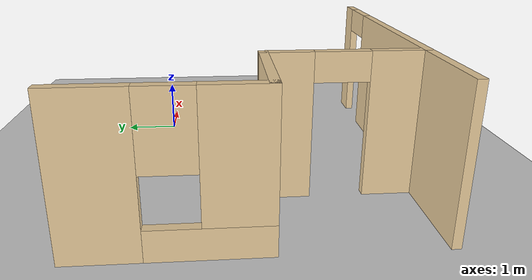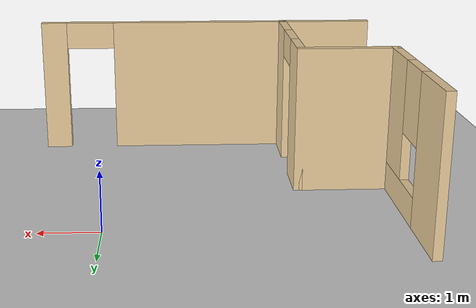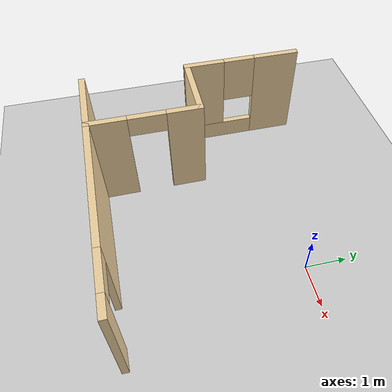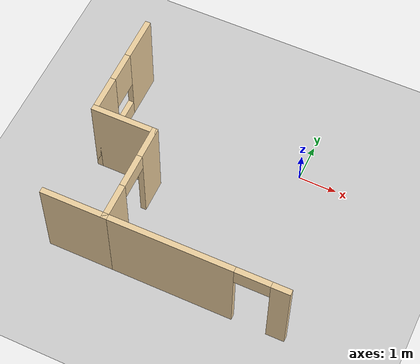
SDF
<sdf version="1.6">
 <world name="default">
  <model name="ground_plane">
   <static>1</static>
   <link name="link">
    <collision name="collision">
     <geometry><plane><normal>0 0 1</normal><size>100 100</size></plane></geometry>
     <surface>
      <contact><collide_bitmask>65535</collide_bitmask></contact>
      <friction><ode><mu>100</mu><mu2>50</mu2></ode></friction>
     </surface>
    </collision>
    <visual name="visual">
     <cast_shadows>0</cast_shadows>
     <geometry><plane><normal>0 0 1</normal><size>100 100</size></plane></geometry>
     <material>
      <script><uri>file://media/materials/scripts/gazebo.material</uri><name>Gazebo/Grey</name></script>
     </material>
    </visual>
   </link>
  </model>
  <model name="someHouse">
   <link name="Wall_38">
    <pose>-4.175 2.725 0 0 0 -1.5708</pose>
    <visual name="Wall_38_Visual_0">
     <pose>-0.917775 0 1.25 0 -0 0</pose>
     <geometry><box><size>1.16445 0.15 2.5</size></box></geometry>
     <material>
      <script><uri>file://media/materials/scripts/gazebo.material</uri><name>Gazebo/Grey</name></script>
      <ambient>0.921569 0.807843 0.615686 1</ambient>
      <shader type="pixel"/>
      <diffuse>0.7 0.7 0.7 1</diffuse>
      <specular>0.01 0.01 0.01 1</specular>
      <emissive>0 0 0 1</emissive>
     </material>
     <meta><layer>0</layer></meta>
    </visual>
    <visual name="Wall_38_Visual_1">
     <pose>0.582225 0 0.25 0 -0 0</pose>
     <geometry><box><size>1.83555 0.15 0.5</size></box></geometry>
     <material>
      <script><uri>file://media/materials/scripts/gazebo.material</uri><name>Gazebo/Grey</name></script>
      <ambient>0.921569 0.807843 0.615686 1</ambient>
      <shader type="pixel"/>
      <diffuse>0.7 0.7 0.7 1</diffuse>
      <specular>0.01 0.01 0.01 1</specular>
      <emissive>0 0 0 1</emissive>
     </material>
     <meta><layer>0</layer></meta>
    </visual>
    <visual name="Wall_38_Visual_2">
     <pose>0.982225 0 1.5 0 -0 0</pose>
     <geometry><box><size>1.03555 0.15 2</size></box></geometry>
     <material>
      <script><uri>file://media/materials/scripts/gazebo.material</uri><name>Gazebo/Grey</name></script>
      <ambient>0.921569 0.807843 0.615686 1</ambient>
      <shader type="pixel"/>
      <diffuse>0.7 0.7 0.7 1</diffuse>
      <specular>0.01 0.01 0.01 1</specular>
      <emissive>0 0 0 1</emissive>
     </material>
     <meta><layer>0</layer></meta>
    </visual>
    <visual name="Wall_38_Visual_3">
     <pose>0.06445 0 1.9 0 -0 0</pose>
     <geometry><box><size>0.8 0.15 1.2</size></box></geometry>
     <material>
      <script><uri>file://media/materials/scripts/gazebo.material</uri><name>Gazebo/Grey</name></script>
      <ambient>0.921569 0.807843 0.615686 1</ambient>
      <shader type="pixel"/>
      <diffuse>0.7 0.7 0.7 1</diffuse>
      <specular>0.01 0.01 0.01 1</specular>
      <emissive>0 0 0 1</emissive>
     </material>
     <meta><layer>0</layer></meta>
    </visual>
    <collision name="Wall_38_Collision_0">
     <pose>-0.917775 0 1.25 0 -0 0</pose>
     <geometry><box><size>1.16445 0.15 2.5</size></box></geometry>
     <surface>
      <friction>
       <ode><mu>1</mu><mu2>1</mu2><fdir1>0 0 0</fdir1><slip1>0</slip1><slip2>0</slip2></ode>
       <torsional>
        <coefficient>1</coefficient>
        <patch_radius>0</patch_radius>
        <surface_radius>0</surface_radius>
        <use_patch_radius>1</use_patch_radius>
        <ode><slip>0</slip></ode>
       </torsional>
      </friction>
      <bounce><restitution_coefficient>0</restitution_coefficient><threshold>1e+06</threshold></bounce>
      <contact>
       <collide_without_contact>0</collide_without_contact>
       <collide_without_contact_bitmask>1</collide_without_contact_bitmask>
       <collide_bitmask>1</collide_bitmask>
       <ode>
        <soft_cfm>0</soft_cfm>
        <soft_erp>0.2</soft_erp>
        <kp>1e+13</kp>
        <kd>1</kd>
        <max_vel>0.01</max_vel>
        <min_depth>0</min_depth>
       </ode>
       <bullet>
        <split_impulse>1</split_impulse>
        <split_impulse_penetration_threshold>-0.01</split_impulse_penetration_threshold>
        <soft_cfm>0</soft_cfm>
        <soft_erp>0.2</soft_erp>
        <kp>1e+13</kp>
        <kd>1</kd>
       </bullet>
      </contact>
     </surface>
    </collision>
    <collision name="Wall_38_Collision_1">
     <pose>0.582225 0 0.25 0 -0 0</pose>
     <geometry><box><size>1.83555 0.15 0.5</size></box></geometry>
     <surface>
      <friction>
       <ode><mu>1</mu><mu2>1</mu2><fdir1>0 0 0</fdir1><slip1>0</slip1><slip2>0</slip2></ode>
       <torsional>
        <coefficient>1</coefficient>
        <patch_radius>0</patch_radius>
        <surface_radius>0</surface_radius>
        <use_patch_radius>1</use_patch_radius>
        <ode><slip>0</slip></ode>
       </torsional>
      </friction>
      <bounce><restitution_coefficient>0</restitution_coefficient><threshold>1e+06</threshold></bounce>
      <contact>
       <collide_without_contact>0</collide_without_contact>
       <collide_without_contact_bitmask>1</collide_without_contact_bitmask>
       <collide_bitmask>1</collide_bitmask>
       <ode>
        <soft_cfm>0</soft_cfm>
        <soft_erp>0.2</soft_erp>
        <kp>1e+13</kp>
        <kd>1</kd>
        <max_vel>0.01</max_vel>
        <min_depth>0</min_depth>
       </ode>
       <bullet>
        <split_impulse>1</split_impulse>
        <split_impulse_penetration_threshold>-0.01</split_impulse_penetration_threshold>
        <soft_cfm>0</soft_cfm>
        <soft_erp>0.2</soft_erp>
        <kp>1e+13</kp>
        <kd>1</kd>
       </bullet>
      </contact>
     </surface>
    </collision>
    <collision name="Wall_38_Collision_2">
     <pose>0.982225 0 1.5 0 -0 0</pose>
     <geometry><box><size>1.03555 0.15 2</size></box></geometry>
     <surface>
      <friction>
       <ode><mu>1</mu><mu2>1</mu2><fdir1>0 0 0</fdir1><slip1>0</slip1><slip2>0</slip2></ode>
       <torsional>
        <coefficient>1</coefficient>
        <patch_radius>0</patch_radius>
        <surface_radius>0</surface_radius>
        <use_patch_radius>1</use_patch_radius>
        <ode><slip>0</slip></ode>
       </torsional>
      </friction>
      <bounce><restitution_coefficient>0</restitution_coefficient><threshold>1e+06</threshold></bounce>
      <contact>
       <collide_without_contact>0</collide_without_contact>
       <collide_without_contact_bitmask>1</collide_without_contact_bitmask>
       <collide_bitmask>1</collide_bitmask>
       <ode>
        <soft_cfm>0</soft_cfm>
        <soft_erp>0.2</soft_erp>
        <kp>1e+13</kp>
        <kd>1</kd>
        <max_vel>0.01</max_vel>
        <min_depth>0</min_depth>
       </ode>
       <bullet>
        <split_impulse>1</split_impulse>
        <split_impulse_penetration_threshold>-0.01</split_impulse_penetration_threshold>
        <soft_cfm>0</soft_cfm>
        <soft_erp>0.2</soft_erp>
        <kp>1e+13</kp>
        <kd>1</kd>
       </bullet>
      </contact>
     </surface>
    </collision>
    <collision name="Wall_38_Collision_3">
     <pose>0.06445 0 1.9 0 -0 0</pose>
     <geometry><box><size>0.8 0.15 1.2</size></box></geometry>
     <surface>
      <friction>
       <ode><mu>1</mu><mu2>1</mu2><fdir1>0 0 0</fdir1><slip1>0</slip1><slip2>0</slip2></ode>
       <torsional>
        <coefficient>1</coefficient>
        <patch_radius>0</patch_radius>
        <surface_radius>0</surface_radius>
        <use_patch_radius>1</use_patch_radius>
        <ode><slip>0</slip></ode>
       </torsional>
      </friction>
      <bounce><restitution_coefficient>0</restitution_coefficient><threshold>1e+06</threshold></bounce>
      <contact>
       <collide_without_contact>0</collide_without_contact>
       <collide_without_contact_bitmask>1</collide_without_contact_bitmask>
       <collide_bitmask>1</collide_bitmask>
       <ode>
        <soft_cfm>0</soft_cfm>
        <soft_erp>0.2</soft_erp>
        <kp>1e+13</kp>
        <kd>1</kd>
        <max_vel>0.01</max_vel>
        <min_depth>0</min_depth>
       </ode>
       <bullet>
        <split_impulse>1</split_impulse>
        <split_impulse_penetration_threshold>-0.01</split_impulse_penetration_threshold>
        <soft_cfm>0</soft_cfm>
        <soft_erp>0.2</soft_erp>
        <kp>1e+13</kp>
        <kd>1</kd>
       </bullet>
      </contact>
     </surface>
    </collision>
   </link>
   <link name="Wall_39">
    <pose>-3.375 1.3 0 0 -0 0</pose>
    <visual name="Wall_39_Visual">
     <pose>0 0 1.25 0 -0 0</pose>
     <geometry><box><size>1.75 0.15 2.5</size></box></geometry>
     <material>
      <script><uri>file://media/materials/scripts/gazebo.material</uri><name>Gazebo/Grey</name></script>
      <ambient>0.921569 0.807843 0.615686 1</ambient>
      <shader type="pixel"/>
      <diffuse>0.7 0.7 0.7 1</diffuse>
      <specular>0.01 0.01 0.01 1</specular>
      <emissive>0 0 0 1</emissive>
     </material>
     <meta><layer>0</layer></meta>
    </visual>
    <collision name="Wall_39_Collision">
     <pose>0 0 1.25 0 -0 0</pose>
     <geometry><box><size>1.75 0.15 2.5</size></box></geometry>
     <surface>
      <friction>
       <ode><mu>1</mu><mu2>1</mu2><fdir1>0 0 0</fdir1><slip1>0</slip1><slip2>0</slip2></ode>
       <torsional>
        <coefficient>1</coefficient>
        <patch_radius>0</patch_radius>
        <surface_radius>0</surface_radius>
        <use_patch_radius>1</use_patch_radius>
        <ode><slip>0</slip></ode>
       </torsional>
      </friction>
      <bounce><restitution_coefficient>0</restitution_coefficient><threshold>1e+06</threshold></bounce>
      <contact>
       <collide_without_contact>0</collide_without_contact>
       <collide_without_contact_bitmask>1</collide_without_contact_bitmask>
       <collide_bitmask>1</collide_bitmask>
       <ode>
        <soft_cfm>0</soft_cfm>
        <soft_erp>0.2</soft_erp>
        <kp>1e+13</kp>
        <kd>1</kd>
        <max_vel>0.01</max_vel>
        <min_depth>0</min_depth>
       </ode>
       <bullet>
        <split_impulse>1</split_impulse>
        <split_impulse_penetration_threshold>-0.01</split_impulse_penetration_threshold>
        <soft_cfm>0</soft_cfm>
        <soft_erp>0.2</soft_erp>
        <kp>1e+13</kp>
        <kd>1</kd>
       </bullet>
      </contact>
     </surface>
    </collision>
   </link>
   <link name="Wall_40">
    <pose>-2.575 0 0 0 0 -1.5708</pose>
    <visual name="Wall_40_Visual_0">
     <pose>-0.940762 0 1.25 0 -0 0</pose>
     <geometry><box><size>0.868475 0.15 2.5</size></box></geometry>
     <material>
      <script><uri>file://media/materials/scripts/gazebo.material</uri><name>Gazebo/Grey</name></script>
      <ambient>0.921569 0.807843 0.615686 1</ambient>
      <shader type="pixel"/>
      <diffuse>0.7 0.7 0.7 1</diffuse>
      <specular>0.01 0.01 0.01 1</specular>
      <emissive>0 0 0 1</emissive>
     </material>
     <meta><layer>0</layer></meta>
    </visual>
    <visual name="Wall_40_Visual_1">
     <pose>0.884238 0 1.25 0 -0 0</pose>
     <geometry><box><size>0.981525 0.15 2.5</size></box></geometry>
     <material>
      <script><uri>file://media/materials/scripts/gazebo.material</uri><name>Gazebo/Grey</name></script>
      <ambient>0.921569 0.807843 0.615686 1</ambient>
      <shader type="pixel"/>
      <diffuse>0.7 0.7 0.7 1</diffuse>
      <specular>0.01 0.01 0.01 1</specular>
      <emissive>0 0 0 1</emissive>
     </material>
     <meta><layer>0</layer></meta>
    </visual>
    <visual name="Wall_40_Visual_2">
     <pose>-0.056525 0 2.25 0 -0 0</pose>
     <geometry><box><size>0.9 0.15 0.5</size></box></geometry>
     <material>
      <script><uri>file://media/materials/scripts/gazebo.material</uri><name>Gazebo/Grey</name></script>
      <ambient>0.921569 0.807843 0.615686 1</ambient>
      <shader type="pixel"/>
      <diffuse>0.7 0.7 0.7 1</diffuse>
      <specular>0.01 0.01 0.01 1</specular>
      <emissive>0 0 0 1</emissive>
     </material>
     <meta><layer>0</layer></meta>
    </visual>
    <collision name="Wall_40_Collision_0">
     <pose>-0.940762 0 1.25 0 -0 0</pose>
     <geometry><box><size>0.868475 0.15 2.5</size></box></geometry>
     <surface>
      <friction>
       <ode><mu>1</mu><mu2>1</mu2><fdir1>0 0 0</fdir1><slip1>0</slip1><slip2>0</slip2></ode>
       <torsional>
        <coefficient>1</coefficient>
        <patch_radius>0</patch_radius>
        <surface_radius>0</surface_radius>
        <use_patch_radius>1</use_patch_radius>
        <ode><slip>0</slip></ode>
       </torsional>
      </friction>
      <bounce><restitution_coefficient>0</restitution_coefficient><threshold>1e+06</threshold></bounce>
      <contact>
       <collide_without_contact>0</collide_without_contact>
       <collide_without_contact_bitmask>1</collide_without_contact_bitmask>
       <collide_bitmask>1</collide_bitmask>
       <ode>
        <soft_cfm>0</soft_cfm>
        <soft_erp>0.2</soft_erp>
        <kp>1e+13</kp>
        <kd>1</kd>
        <max_vel>0.01</max_vel>
        <min_depth>0</min_depth>
       </ode>
       <bullet>
        <split_impulse>1</split_impulse>
        <split_impulse_penetration_threshold>-0.01</split_impulse_penetration_threshold>
        <soft_cfm>0</soft_cfm>
        <soft_erp>0.2</soft_erp>
        <kp>1e+13</kp>
        <kd>1</kd>
       </bullet>
      </contact>
     </surface>
    </collision>
    <collision name="Wall_40_Collision_1">
     <pose>0.884238 0 1.25 0 -0 0</pose>
     <geometry><box><size>0.981525 0.15 2.5</size></box></geometry>
     <surface>
      <friction>
       <ode><mu>1</mu><mu2>1</mu2><fdir1>0 0 0</fdir1><slip1>0</slip1><slip2>0</slip2></ode>
       <torsional>
        <coefficient>1</coefficient>
        <patch_radius>0</patch_radius>
        <surface_radius>0</surface_radius>
        <use_patch_radius>1</use_patch_radius>
        <ode><slip>0</slip></ode>
       </torsional>
      </friction>
      <bounce><restitution_coefficient>0</restitution_coefficient><threshold>1e+06</threshold></bounce>
      <contact>
       <collide_without_contact>0</collide_without_contact>
       <collide_without_contact_bitmask>1</collide_without_contact_bitmask>
       <collide_bitmask>1</collide_bitmask>
       <ode>
        <soft_cfm>0</soft_cfm>
        <soft_erp>0.2</soft_erp>
        <kp>1e+13</kp>
        <kd>1</kd>
        <max_vel>0.01</max_vel>
        <min_depth>0</min_depth>
       </ode>
       <bullet>
        <split_impulse>1</split_impulse>
        <split_impulse_penetration_threshold>-0.01</split_impulse_penetration_threshold>
        <soft_cfm>0</soft_cfm>
        <soft_erp>0.2</soft_erp>
        <kp>1e+13</kp>
        <kd>1</kd>
       </bullet>
      </contact>
     </surface>
    </collision>
    <collision name="Wall_40_Collision_2">
     <pose>-0.056525 0 2.25 0 -0 0</pose>
     <geometry><box><size>0.9 0.15 0.5</size></box></geometry>
     <surface>
      <friction>
       <ode><mu>1</mu><mu2>1</mu2><fdir1>0 0 0</fdir1><slip1>0</slip1><slip2>0</slip2></ode>
       <torsional>
        <coefficient>1</coefficient>
        <patch_radius>0</patch_radius>
        <surface_radius>0</surface_radius>
        <use_patch_radius>1</use_patch_radius>
        <ode><slip>0</slip></ode>
       </torsional>
      </friction>
      <bounce><restitution_coefficient>0</restitution_coefficient><threshold>1e+06</threshold></bounce>
      <contact>
       <collide_without_contact>0</collide_without_contact>
       <collide_without_contact_bitmask>1</collide_without_contact_bitmask>
       <collide_bitmask>1</collide_bitmask>
       <ode>
        <soft_cfm>0</soft_cfm>
        <soft_erp>0.2</soft_erp>
        <kp>1e+13</kp>
        <kd>1</kd>
        <max_vel>0.01</max_vel>
        <min_depth>0</min_depth>
       </ode>
       <bullet>
        <split_impulse>1</split_impulse>
        <split_impulse_penetration_threshold>-0.01</split_impulse_penetration_threshold>
        <soft_cfm>0</soft_cfm>
        <soft_erp>0.2</soft_erp>
        <kp>1e+13</kp>
        <kd>1</kd>
       </bullet>
      </contact>
     </surface>
    </collision>
   </link>
   <link name="Wall_41">
    <pose>-0.275 -1.3 0 0 -0 0</pose>
    <visual name="Wall_41_Visual_0">
     <pose>-0.691647 0 1.25 0 -0 0</pose>
     <geometry><box><size>3.36671 0.15 2.5</size></box></geometry>
     <material>
      <script><uri>file://media/materials/scripts/gazebo.material</uri><name>Gazebo/Grey</name></script>
      <ambient>0.921569 0.807843 0.615686 1</ambient>
      <shader type="pixel"/>
      <diffuse>0.7 0.7 0.7 1</diffuse>
      <specular>0.01 0.01 0.01 1</specular>
      <emissive>0 0 0 1</emissive>
     </material>
     <meta><layer>0</layer></meta>
    </visual>
    <visual name="Wall_41_Visual_1">
     <pose>2.13335 0 1.25 0 -0 0</pose>
     <geometry><box><size>0.483294 0.15 2.5</size></box></geometry>
     <material>
      <script><uri>file://media/materials/scripts/gazebo.material</uri><name>Gazebo/Grey</name></script>
      <ambient>0.921569 0.807843 0.615686 1</ambient>
      <shader type="pixel"/>
      <diffuse>0.7 0.7 0.7 1</diffuse>
      <specular>0.01 0.01 0.01 1</specular>
      <emissive>0 0 0 1</emissive>
     </material>
     <meta><layer>0</layer></meta>
    </visual>
    <visual name="Wall_41_Visual_2">
     <pose>1.44171 0 2.25 0 -0 0</pose>
     <geometry><box><size>0.9 0.15 0.5</size></box></geometry>
     <material>
      <script><uri>file://media/materials/scripts/gazebo.material</uri><name>Gazebo/Grey</name></script>
      <ambient>0.921569 0.807843 0.615686 1</ambient>
      <shader type="pixel"/>
      <diffuse>0.7 0.7 0.7 1</diffuse>
      <specular>0.01 0.01 0.01 1</specular>
      <emissive>0 0 0 1</emissive>
     </material>
     <meta><layer>0</layer></meta>
    </visual>
    <collision name="Wall_41_Collision_0">
     <pose>-0.691647 0 1.25 0 -0 0</pose>
     <geometry><box><size>3.36671 0.15 2.5</size></box></geometry>
     <surface>
      <friction>
       <ode><mu>1</mu><mu2>1</mu2><fdir1>0 0 0</fdir1><slip1>0</slip1><slip2>0</slip2></ode>
       <torsional>
        <coefficient>1</coefficient>
        <patch_radius>0</patch_radius>
        <surface_radius>0</surface_radius>
        <use_patch_radius>1</use_patch_radius>
        <ode><slip>0</slip></ode>
       </torsional>
      </friction>
      <bounce><restitution_coefficient>0</restitution_coefficient><threshold>1e+06</threshold></bounce>
      <contact>
       <collide_without_contact>0</collide_without_contact>
       <collide_without_contact_bitmask>1</collide_without_contact_bitmask>
       <collide_bitmask>1</collide_bitmask>
       <ode>
        <soft_cfm>0</soft_cfm>
        <soft_erp>0.2</soft_erp>
        <kp>1e+13</kp>
        <kd>1</kd>
        <max_vel>0.01</max_vel>
        <min_depth>0</min_depth>
       </ode>
       <bullet>
        <split_impulse>1</split_impulse>
        <split_impulse_penetration_threshold>-0.01</split_impulse_penetration_threshold>
        <soft_cfm>0</soft_cfm>
        <soft_erp>0.2</soft_erp>
        <kp>1e+13</kp>
        <kd>1</kd>
       </bullet>
      </contact>
     </surface>
    </collision>
    <collision name="Wall_41_Collision_1">
     <pose>2.13335 0 1.25 0 -0 0</pose>
     <geometry><box><size>0.483294 0.15 2.5</size></box></geometry>
     <surface>
      <friction>
       <ode><mu>1</mu><mu2>1</mu2><fdir1>0 0 0</fdir1><slip1>0</slip1><slip2>0</slip2></ode>
       <torsional>
        <coefficient>1</coefficient>
        <patch_radius>0</patch_radius>
        <surface_radius>0</surface_radius>
        <use_patch_radius>1</use_patch_radius>
        <ode><slip>0</slip></ode>
       </torsional>
      </friction>
      <bounce><restitution_coefficient>0</restitution_coefficient><threshold>1e+06</threshold></bounce>
      <contact>
       <collide_without_contact>0</collide_without_contact>
       <collide_without_contact_bitmask>1</collide_without_contact_bitmask>
       <collide_bitmask>1</collide_bitmask>
       <ode>
        <soft_cfm>0</soft_cfm>
        <soft_erp>0.2</soft_erp>
        <kp>1e+13</kp>
        <kd>1</kd>
        <max_vel>0.01</max_vel>
        <min_depth>0</min_depth>
       </ode>
       <bullet>
        <split_impulse>1</split_impulse>
        <split_impulse_penetration_threshold>-0.01</split_impulse_penetration_threshold>
        <soft_cfm>0</soft_cfm>
        <soft_erp>0.2</soft_erp>
        <kp>1e+13</kp>
        <kd>1</kd>
       </bullet>
      </contact>
     </surface>
    </collision>
    <collision name="Wall_41_Collision_2">
     <pose>1.44171 0 2.25 0 -0 0</pose>
     <geometry><box><size>0.9 0.15 0.5</size></box></geometry>
     <surface>
      <friction>
       <ode><mu>1</mu><mu2>1</mu2><fdir1>0 0 0</fdir1><slip1>0</slip1><slip2>0</slip2></ode>
       <torsional>
        <coefficient>1</coefficient>
        <patch_radius>0</patch_radius>
        <surface_radius>0</surface_radius>
        <use_patch_radius>1</use_patch_radius>
        <ode><slip>0</slip></ode>
       </torsional>
      </friction>
      <bounce><restitution_coefficient>0</restitution_coefficient><threshold>1e+06</threshold></bounce>
      <contact>
       <collide_without_contact>0</collide_without_contact>
       <collide_without_contact_bitmask>1</collide_without_contact_bitmask>
       <collide_bitmask>1</collide_bitmask>
       <ode>
        <soft_cfm>0</soft_cfm>
        <soft_erp>0.2</soft_erp>
        <kp>1e+13</kp>
        <kd>1</kd>
        <max_vel>0.01</max_vel>
        <min_depth>0</min_depth>
       </ode>
       <bullet>
        <split_impulse>1</split_impulse>
        <split_impulse_penetration_threshold>-0.01</split_impulse_penetration_threshold>
        <soft_cfm>0</soft_cfm>
        <soft_erp>0.2</soft_erp>
        <kp>1e+13</kp>
        <kd>1</kd>
       </bullet>
      </contact>
     </surface>
    </collision>
   </link>
   <link name="Wall_59">
    <pose>-3.375 -1.3 0 0 -0 3.14159</pose>
    <visual name="Wall_59_Visual">
     <pose>0 0 1.25 0 -0 0</pose>
     <geometry><box><size>1.75 0.15 2.5</size></box></geometry>
     <material>
      <script><uri>file://media/materials/scripts/gazebo.material</uri><name>Gazebo/Grey</name></script>
      <ambient>0.921569 0.807843 0.615686 1</ambient>
      <shader type="pixel"/>
      <diffuse>0.7 0.7 0.7 1</diffuse>
      <specular>0.01 0.01 0.01 1</specular>
      <emissive>0 0 0 1</emissive>
     </material>
     <meta><layer>0</layer></meta>
    </visual>
    <collision name="Wall_59_Collision">
     <pose>0 0 1.25 0 -0 0</pose>
     <geometry><box><size>1.75 0.15 2.5</size></box></geometry>
     <surface>
      <friction>
       <ode><mu>1</mu><mu2>1</mu2><fdir1>0 0 0</fdir1><slip1>0</slip1><slip2>0</slip2></ode>
       <torsional>
        <coefficient>1</coefficient>
        <patch_radius>0</patch_radius>
        <surface_radius>0</surface_radius>
        <use_patch_radius>1</use_patch_radius>
        <ode><slip>0</slip></ode>
       </torsional>
      </friction>
      <bounce><restitution_coefficient>0</restitution_coefficient><threshold>1e+06</threshold></bounce>
      <contact>
       <collide_without_contact>0</collide_without_contact>
       <collide_without_contact_bitmask>1</collide_without_contact_bitmask>
       <collide_bitmask>1</collide_bitmask>
       <ode>
        <soft_cfm>0</soft_cfm>
        <soft_erp>0.2</soft_erp>
        <kp>1e+13</kp>
        <kd>1</kd>
        <max_vel>0.01</max_vel>
        <min_depth>0</min_depth>
       </ode>
       <bullet>
        <split_impulse>1</split_impulse>
        <split_impulse_penetration_threshold>-0.01</split_impulse_penetration_threshold>
        <soft_cfm>0</soft_cfm>
        <soft_erp>0.2</soft_erp>
        <kp>1e+13</kp>
        <kd>1</kd>
       </bullet>
      </contact>
     </surface>
    </collision>
   </link>
   <static>1</static>
   <pose>-0.67479 -3.02645 0 0 -0 0</pose>
  </model>
 </world>
</sdf>
